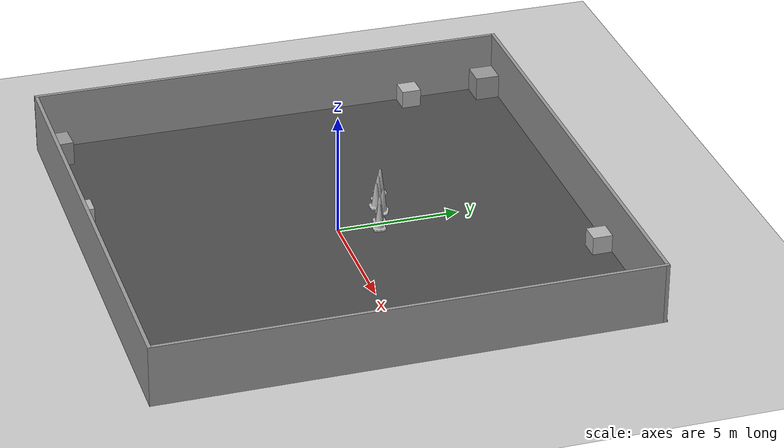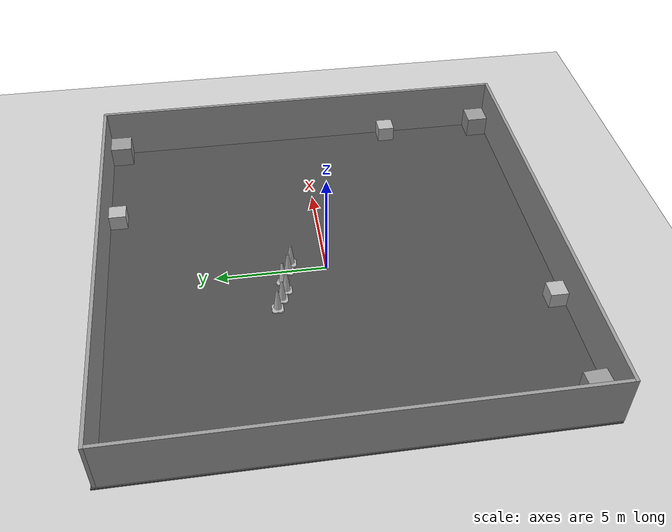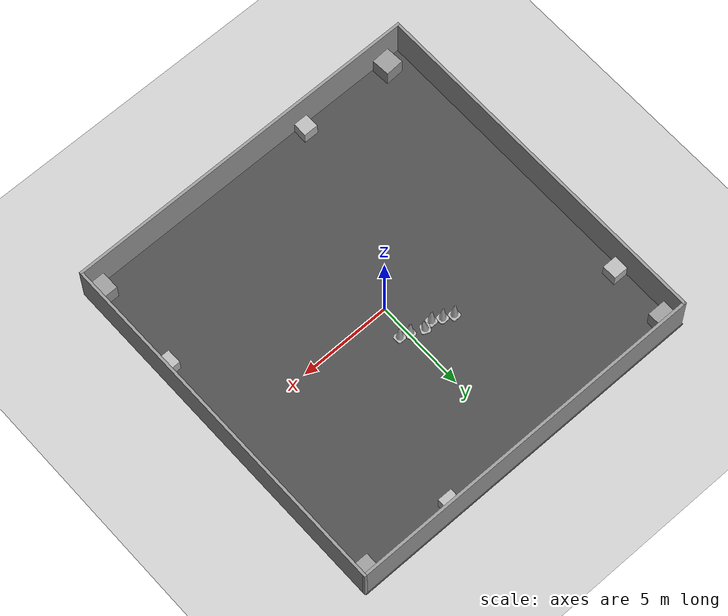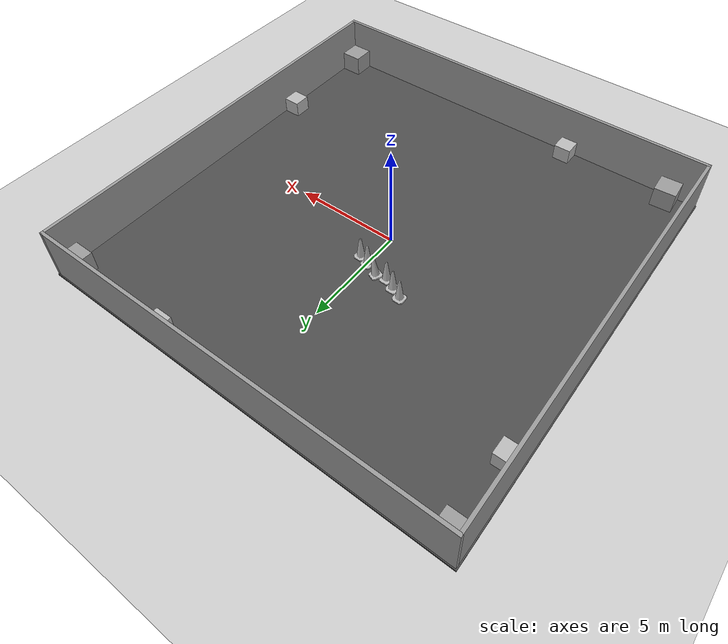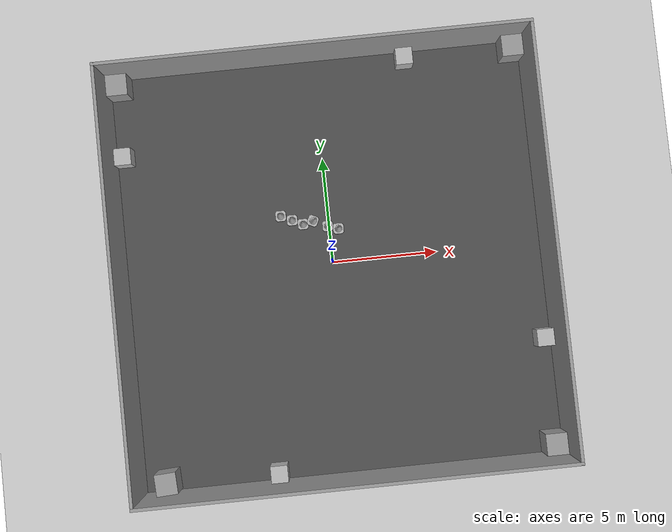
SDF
<sdf version="1.7">
 <world name="default">
  <light name="sun" type="directional">
   <pose>0 0 10 0 -0 0</pose>
   <diffuse>0.8 0.8 0.8 1</diffuse>
   <specular>0.2 0.2 0.2 1</specular>
   <attenuation>
    <range>1000</range>
    <constant>0.9</constant>
    <linear>0.01</linear>
    <quadratic>0.001</quadratic>
   </attenuation>
   <direction>-0.5 0.1 -0.9</direction>
   <spot><inner_angle>0</inner_angle><outer_angle>0</outer_angle><falloff>0</falloff></spot>
  </light>
  <model name="ground_plane">
   <static>1</static>
   <link name="link">
    <collision name="collision">
     <geometry><plane><normal>0 0 1</normal><size>100 100</size></plane></geometry>
     <surface><friction><ode><mu>100</mu><mu2>50</mu2></ode></friction></surface>
    </collision>
    <visual name="visual">
     <cast_shadows>0</cast_shadows>
     <geometry><plane><normal>0 0 1</normal><size>100 100</size></plane></geometry>
     <material>
      <script><uri>file://media/materials/scripts/gazebo.material</uri><name>Gazebo/Grey</name></script>
     </material>
    </visual>
   </link>
  </model>
  <gravity>0 0 -9.8</gravity>
  <magnetic_field>6e-06 2.3e-05 -4.2e-05</magnetic_field>
  <atmosphere type="adiabatic"/>
  <physics type="ode">
   <max_step_size>0.001</max_step_size>
   <real_time_factor>1</real_time_factor>
   <real_time_update_rate>1000</real_time_update_rate>
  </physics>
  <scene><ambient>0.4 0.4 0.4 1</ambient><background>0.7 0.7 0.7 1</background><shadows>1</shadows></scene>
  <audio><device>default</device></audio>
  <spherical_coordinates>
   <surface_model>EARTH_WGS84</surface_model>
   <latitude_deg>0</latitude_deg>
   <longitude_deg>0</longitude_deg>
   <elevation>0</elevation>
   <heading_deg>0</heading_deg>
  </spherical_coordinates>
  <model name="asphalt_plane">
   <static>1</static>
   <link name="link">
    <collision name="collision"><geometry><box><size>20 20 0.1</size></box></geometry></collision>
    <visual name="visual">
     <cast_shadows>0</cast_shadows>
     <geometry><box><size>20 20 0.1</size></box></geometry>
     <material>
      <script>
       <uri>model://asphalt_plane/materials/scripts</uri>
       <uri>model://asphalt_plane/materials/textures</uri>
       <name>vrc/asphalt</name>
      </script>
     </material>
    </visual>
   </link>
   <pose>0.027118 -0.028406 0 0 -0 0</pose>
  </model>
  <model name="4Walls">
   <pose>0.075 -0.075 0 0 -0 0</pose>
   <link name="Wall_17">
    <collision name="Wall_17_Collision">
     <geometry><box><size>20 0.15 2.5</size></box></geometry>
     <pose>0 0 1.25 0 -0 0</pose>
    </collision>
    <visual name="Wall_17_Visual">
     <pose>0 0 1.25 0 -0 0</pose>
     <geometry><box><size>20 0.15 2.5</size></box></geometry>
     <material>
      <script><uri>file://media/materials/scripts/gazebo.material</uri><name>Gazebo/Grey</name></script>
      <ambient>1 1 1 1</ambient>
     </material>
     <meta><layer>0</layer></meta>
    </visual>
    <pose>0 -9.925 0 0 -0 0</pose>
   </link>
   <link name="Wall_19">
    <collision name="Wall_19_Collision">
     <geometry><box><size>20 0.15 2.5</size></box></geometry>
     <pose>0 0 1.25 0 -0 0</pose>
    </collision>
    <visual name="Wall_19_Visual">
     <pose>0 0 1.25 0 -0 0</pose>
     <geometry><box><size>20 0.15 2.5</size></box></geometry>
     <material>
      <script><uri>file://media/materials/scripts/gazebo.material</uri><name>Gazebo/Grey</name></script>
      <ambient>1 1 1 1</ambient>
     </material>
     <meta><layer>0</layer></meta>
    </visual>
    <pose>9.925 -0 0 0 -0 1.5708</pose>
   </link>
   <link name="Wall_21">
    <collision name="Wall_21_Collision">
     <geometry><box><size>20 0.15 2.5</size></box></geometry>
     <pose>0 0 1.25 0 -0 0</pose>
    </collision>
    <visual name="Wall_21_Visual">
     <pose>0 0 1.25 0 -0 0</pose>
     <geometry><box><size>20 0.15 2.5</size></box></geometry>
     <material>
      <script><uri>file://media/materials/scripts/gazebo.material</uri><name>Gazebo/Grey</name></script>
      <ambient>1 1 1 1</ambient>
     </material>
     <meta><layer>0</layer></meta>
    </visual>
    <pose>0 9.925 0 0 -0 3.14159</pose>
   </link>
   <link name="Wall_22">
    <collision name="Wall_22_Collision">
     <geometry><box><size>20 0.15 2.5</size></box></geometry>
     <pose>0 0 1.25 0 -0 0</pose>
    </collision>
    <visual name="Wall_22_Visual">
     <pose>0 0 1.25 0 -0 0</pose>
     <geometry><box><size>20 0.15 2.5</size></box></geometry>
     <material>
      <script><uri>file://media/materials/scripts/gazebo.material</uri><name>Gazebo/Grey</name></script>
      <ambient>1 1 1 1</ambient>
     </material>
     <meta><layer>0</layer></meta>
    </visual>
    <pose>-9.925 -0 0 0 -0 -1.5708</pose>
   </link>
   <static>1</static>
  </model>
  <model name="unit_box">
   <pose>9.40678 -9.39921 0.550002 -4e-06 -0 4.6e-05</pose>
   <link name="link">
    <inertial>
     <mass>1</mass>
     <inertia>
      <ixx>0.166667</ixx>
      <ixy>0</ixy>
      <ixz>0</ixz>
      <iyy>0.166667</iyy>
      <iyz>0</iyz>
      <izz>0.166667</izz>
     </inertia>
    </inertial>
    <collision name="collision"><geometry><box><size>1 1 1</size></box></geometry></collision>
    <visual name="visual">
     <geometry><box><size>1 1 1</size></box></geometry>
     <material>
      <script><name>Gazebo/Grey</name><uri>file://media/materials/scripts/gazebo.material</uri></script>
     </material>
    </visual>
   </link>
  </model>
  <model name="unit_box_clone">
   <pose>9.4247 9.27477 0.550002 -4e-06 -0 5.3e-05</pose>
   <link name="link">
    <inertial>
     <mass>1</mass>
     <inertia>
      <ixx>0.166667</ixx>
      <ixy>0</ixy>
      <ixz>0</ixz>
      <iyy>0.166667</iyy>
      <iyz>0</iyz>
      <izz>0.166667</izz>
     </inertia>
    </inertial>
    <collision name="collision"><geometry><box><size>1 1 1</size></box></geometry></collision>
    <visual name="visual">
     <geometry><box><size>1 1 1</size></box></geometry>
     <material>
      <script><name>Gazebo/Grey</name><uri>file://media/materials/scripts/gazebo.material</uri></script>
     </material>
    </visual>
   </link>
  </model>
  <model name="unit_box_clone_clone">
   <pose>-9.26193 9.27499 0.55 0 -0 1.6e-05</pose>
   <link name="link">
    <inertial>
     <mass>1</mass>
     <inertia>
      <ixx>0.166667</ixx>
      <ixy>0</ixy>
      <ixz>0</ixz>
      <iyy>0.166667</iyy>
      <iyz>0</iyz>
      <izz>0.166667</izz>
     </inertia>
    </inertial>
    <collision name="collision"><geometry><box><size>1 1 1</size></box></geometry></collision>
    <visual name="visual">
     <geometry><box><size>1 1 1</size></box></geometry>
     <material>
      <script><name>Gazebo/Grey</name><uri>file://media/materials/scripts/gazebo.material</uri></script>
     </material>
    </visual>
   </link>
  </model>
  <model name="unit_box_clone_clone_clone">
   <pose>-8.635 -9.39748 0.549998 -4e-06 0 0.05666</pose>
   <link name="link">
    <inertial>
     <mass>1</mass>
     <inertia>
      <ixx>0.166667</ixx>
      <ixy>0</ixy>
      <ixz>0</ixz>
      <iyy>0.166667</iyy>
      <iyz>0</iyz>
      <izz>0.166667</izz>
     </inertia>
    </inertial>
    <collision name="collision"><geometry><box><size>1 1 1</size></box></geometry></collision>
    <visual name="visual">
     <geometry><box><size>1 1 1</size></box></geometry>
     <material>
      <script><name>Gazebo/Grey</name><uri>file://media/materials/scripts/gazebo.material</uri></script>
     </material>
    </visual>
   </link>
  </model>
  <model name="number1">
   <pose>-3.44359 -9.53926 0.4 0 -0 0</pose>
   <static>1</static>
   <link name="link">
    <visual name="visual">
     <geometry><mesh><uri>model://number1/meshes/number.dae</uri></mesh></geometry>
     <material>
      <script>
       <uri>model://number1/materials/scripts</uri>
       <uri>model://number1/materials/textures</uri>
       <name>Number/One</name>
      </script>
     </material>
    </visual>
   </link>
  </model>
  <model name="number2">
   <pose>-9.34806 5.92857 0.4 0 -0 0</pose>
   <static>1</static>
   <link name="link">
    <visual name="visual">
     <geometry><mesh><uri>model://number1/meshes/number.dae</uri></mesh></geometry>
     <material>
      <script>
       <uri>model://number2/materials/scripts</uri>
       <uri>model://number2/materials/textures</uri>
       <name>Number/Two</name>
      </script>
     </material>
    </visual>
   </link>
  </model>
  <model name="number3">
   <pose>4.34527 9.36089 0.4 0 -0 0</pose>
   <static>1</static>
   <link name="link">
    <visual name="visual">
     <geometry><mesh><uri>model://number1/meshes/number.dae</uri></mesh></geometry>
     <material>
      <script>
       <uri>model://number3/materials/scripts</uri>
       <uri>model://number3/materials/textures</uri>
       <name>Number/Three</name>
      </script>
     </material>
    </visual>
   </link>
  </model>
  <model name="number4">
   <pose>9.51457 -4.51109 0.4 0 -0 0</pose>
   <static>1</static>
   <link name="link">
    <visual name="visual">
     <geometry><mesh><uri>model://number1/meshes/number.dae</uri></mesh></geometry>
     <material>
      <script>
       <uri>model://number4/materials/scripts</uri>
       <uri>model://number4/materials/textures</uri>
       <name>Number/Four</name>
      </script>
     </material>
    </visual>
   </link>
  </model>
  <model name="Construction Cone_5">
   <link name="link">
    <collision name="collision">
     <geometry>
      <mesh><scale>10 10 10</scale><uri>model://construction_cone/meshes/construction_cone.dae</uri></mesh>
     </geometry>
    </collision>
    <visual name="visual">
     <geometry>
      <mesh><scale>10 10 10</scale><uri>model://construction_cone/meshes/construction_cone.dae</uri></mesh>
     </geometry>
    </visual>
    <inertial>
     <inertia><ixx>1</ixx><ixy>0</ixy><ixz>0</ixz><iyy>1</iyy><iyz>0</iyz><izz>1</izz></inertia>
     <mass>1</mass>
    </inertial>
   </link>
   <pose>0.438975 1.58009 0.050001 2e-06 3e-06 -0.036341</pose>
  </model>
  <model name="Construction Cone_6">
   <link name="link">
    <collision name="collision">
     <geometry>
      <mesh><scale>10 10 10</scale><uri>model://construction_cone/meshes/construction_cone.dae</uri></mesh>
     </geometry>
    </collision>
    <visual name="visual">
     <geometry>
      <mesh><scale>10 10 10</scale><uri>model://construction_cone/meshes/construction_cone.dae</uri></mesh>
     </geometry>
    </visual>
    <inertial>
     <inertia><ixx>1</ixx><ixy>0</ixy><ixz>0</ixz><iyy>1</iyy><iyz>0</iyz><izz>1</izz></inertia>
     <mass>1</mass>
    </inertial>
   </link>
   <pose>-0.06026 1.74793 0.049999 -3e-06 -1e-06 -0.040119</pose>
  </model>
  <model name="Construction Cone_7">
   <link name="link">
    <collision name="collision">
     <geometry>
      <mesh><scale>10 10 10</scale><uri>model://construction_cone/meshes/construction_cone.dae</uri></mesh>
     </geometry>
    </collision>
    <visual name="visual">
     <geometry>
      <mesh><scale>10 10 10</scale><uri>model://construction_cone/meshes/construction_cone.dae</uri></mesh>
     </geometry>
    </visual>
    <inertial>
     <inertia><ixx>1</ixx><ixy>0</ixy><ixz>0</ixz><iyy>1</iyy><iyz>0</iyz><izz>1</izz></inertia>
     <mass>1</mass>
    </inertial>
   </link>
   <pose>-0.746104 2.06778 0.09266 0.128795 0.058418 1.13678</pose>
  </model>
  <model name="Construction Cone_8">
   <link name="link">
    <collision name="collision">
     <geometry>
      <mesh><scale>10 10 10</scale><uri>model://construction_cone/meshes/construction_cone.dae</uri></mesh>
     </geometry>
    </collision>
    <visual name="visual">
     <geometry>
      <mesh><scale>10 10 10</scale><uri>model://construction_cone/meshes/construction_cone.dae</uri></mesh>
     </geometry>
    </visual>
    <inertial>
     <inertia><ixx>1</ixx><ixy>0</ixy><ixz>0</ixz><iyy>1</iyy><iyz>0</iyz><izz>1</izz></inertia>
     <mass>1</mass>
    </inertial>
   </link>
   <pose>-1.22273 1.95849 0.049982 1e-06 1e-06 -0.006921</pose>
  </model>
  <model name="Construction Cone_9">
   <link name="link">
    <collision name="collision">
     <geometry>
      <mesh><scale>10 10 10</scale><uri>model://construction_cone/meshes/construction_cone.dae</uri></mesh>
     </geometry>
    </collision>
    <visual name="visual">
     <geometry>
      <mesh><scale>10 10 10</scale><uri>model://construction_cone/meshes/construction_cone.dae</uri></mesh>
     </geometry>
    </visual>
    <inertial>
     <inertia><ixx>1</ixx><ixy>0</ixy><ixz>0</ixz><iyy>1</iyy><iyz>0</iyz><izz>1</izz></inertia>
     <mass>1</mass>
    </inertial>
   </link>
   <pose>-1.72501 2.19604 0.049988 -0.000144 -0.000185 -0.001334</pose>
  </model>
  <model name="Construction Cone_10">
   <link name="link">
    <collision name="collision">
     <geometry>
      <mesh><scale>10 10 10</scale><uri>model://construction_cone/meshes/construction_cone.dae</uri></mesh>
     </geometry>
    </collision>
    <visual name="visual">
     <geometry>
      <mesh><scale>10 10 10</scale><uri>model://construction_cone/meshes/construction_cone.dae</uri></mesh>
     </geometry>
    </visual>
    <inertial>
     <inertia><ixx>1</ixx><ixy>0</ixy><ixz>0</ixz><iyy>1</iyy><iyz>0</iyz><izz>1</izz></inertia>
     <mass>1</mass>
    </inertial>
   </link>
   <pose>-2.25143 2.44752 0.05 1e-06 -1e-06 0</pose>
  </model>
 </world>
</sdf>
